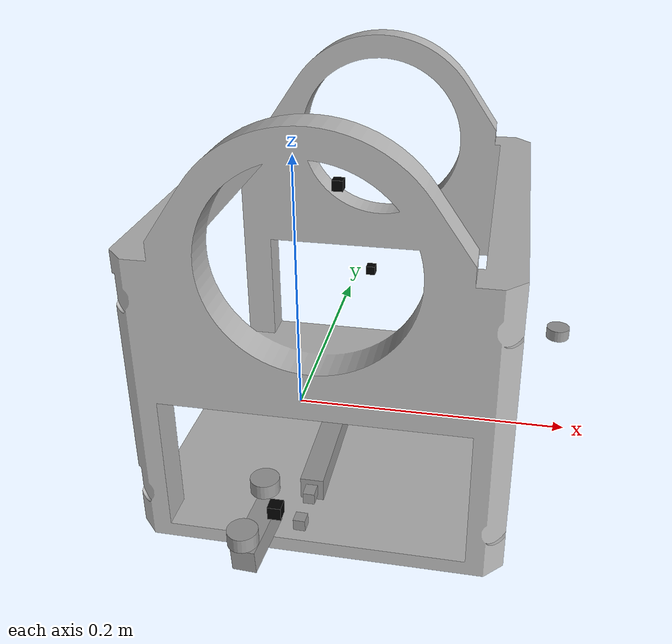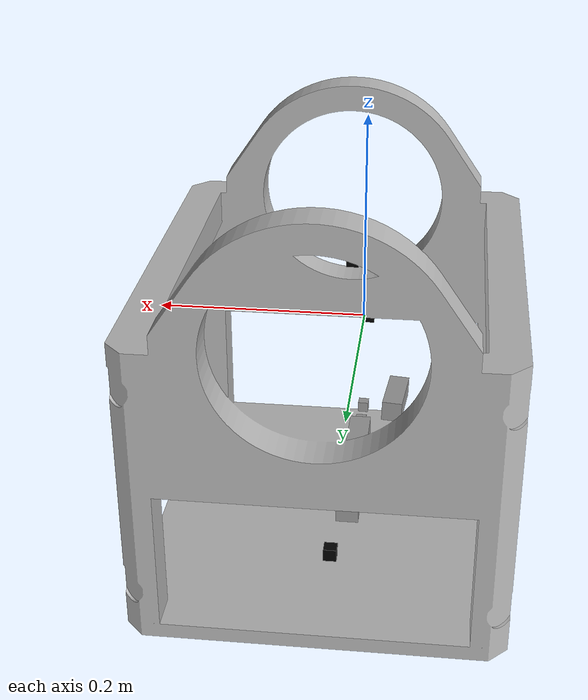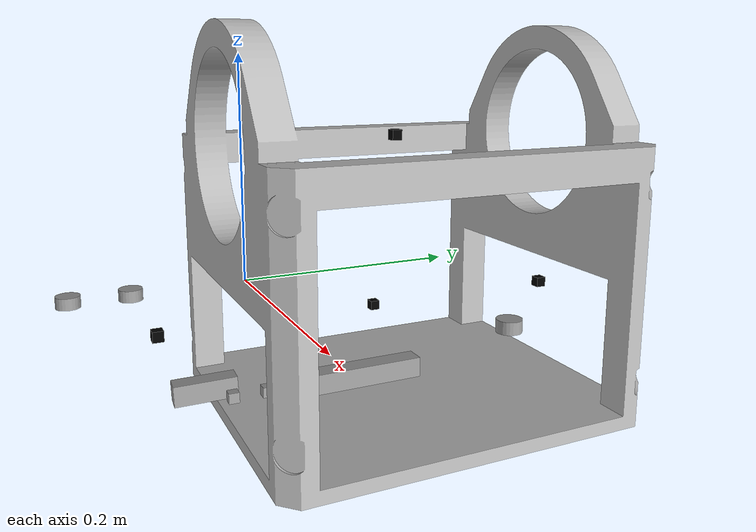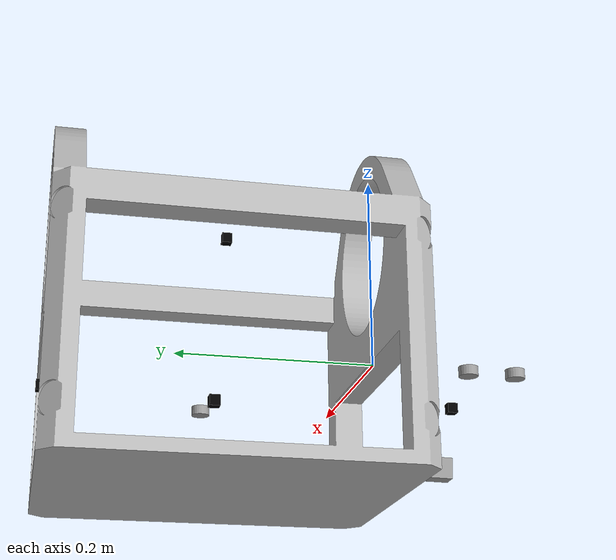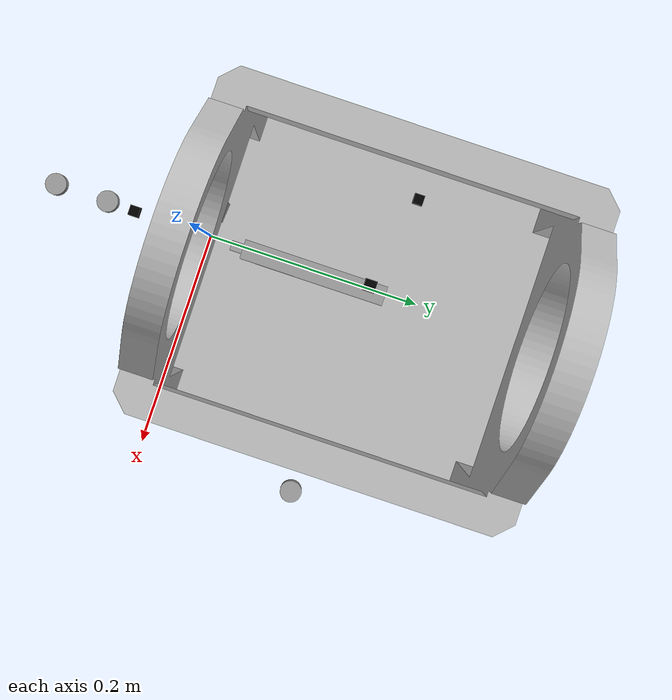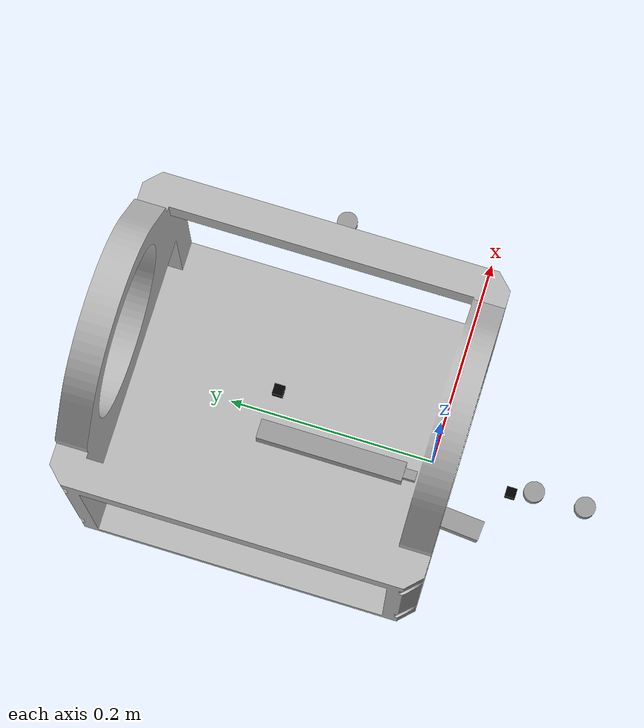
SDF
<?xml version='1.0'?>
<sdf version='1.7'>
  <model name='High_Performance_Beaumont_clawed_bk2'>
    <link name='camera_0_link'>
      <inertial>
        <mass>0.0191625</mass>
        <inertia>
          <ixx>7.98e-06</ixx>
          <ixy>0</ixy>
          <ixz>0</ixz>
          <iyy>7.98e-06</iyy>
          <iyz>0</iyz>
          <izz>7.98e-06</izz>
        </inertia>
        <pose>0 0 0 0 -0 0</pose>
      </inertial>
      <pose>-0 0.325 -0.04 7e-06 -0 -1.5708</pose>
      <gravity>1</gravity>
      <self_collide>0</self_collide>
      <kinematic>0</kinematic>
      <enable_wind>0</enable_wind>
      <sensor name='camera0' type='camera'>
        <update_rate>60</update_rate>
        <visualize>0</visualize>
        <camera name='head'>
          <horizontal_fov>1.39626</horizontal_fov>
          <image>
            <width>640</width>
            <height>480</height>
            <format>R8G8B8</format>
          </image>
          <clip>
            <near>0.02</near>
            <far>300</far>
          </clip>
          <noise>
            <type>gaussian</type>
            <mean>0</mean>
            <stddev>0.007</stddev>
          </noise>
        </camera>
        <plugin name='camera_0_controller' filename='libgazebo_ros_camera.so'>
          <ros>
            <namespace>demo_cam</namespace>
            <remapping>image_raw:=image_demo_0</remapping>
            <remapping>camera_info:=camera_info_demo_0</remapping>
          </ros>
        </plugin>
      </sensor>
      <visual name='visual'>
        <pose>0 0 0 0 -0 0</pose>
        <geometry>
          <box>
            <size>0.01 0.01 0.01</size>
          </box>
        </geometry>
        <material>
          <shader type='pixel'>
            <normal_map>__default__</normal_map>
          </shader>
          <script>
            <name>ModelPreview_4::camera_0_link::visual_MATERIAL_</name>
            <uri>__default__</uri>
          </script>
          <ambient>0 0 0 1</ambient>
          <diffuse>0 0 0 1</diffuse>
          <specular>0 0 0 1</specular>
          <emissive>0 0 0 1</emissive>
        </material>
        <transparency>0</transparency>
        <cast_shadows>1</cast_shadows>
      </visual>
      <collision name='collision_0'>
        <laser_retro>0</laser_retro>
        <max_contacts>10</max_contacts>
        <pose>0 0 0 0 -0 0</pose>
        <geometry>
          <box>
            <size>0.01 0.01 0.01</size>
          </box>
        </geometry>
        <surface>
          <friction>
            <ode>
              <mu>1</mu>
              <mu2>1</mu2>
              <fdir1>0 0 0</fdir1>
              <slip1>0</slip1>
              <slip2>0</slip2>
            </ode>
            <torsional>
              <coefficient>1</coefficient>
              <patch_radius>0</patch_radius>
              <surface_radius>0</surface_radius>
              <use_patch_radius>1</use_patch_radius>
              <ode>
                <slip>0</slip>
              </ode>
            </torsional>
          </friction>
          <bounce>
            <restitution_coefficient>0</restitution_coefficient>
            <threshold>1e+06</threshold>
          </bounce>
          <contact>
            <collide_without_contact>0</collide_without_contact>
            <collide_without_contact_bitmask>1</collide_without_contact_bitmask>
            <collide_bitmask>1</collide_bitmask>
            <ode>
              <soft_cfm>0</soft_cfm>
              <soft_erp>0.2</soft_erp>
              <kp>1e+13</kp>
              <kd>1</kd>
              <max_vel>0.01</max_vel>
              <min_depth>0</min_depth>
            </ode>
            <bullet>
              <split_impulse>1</split_impulse>
              <split_impulse_penetration_threshold>-0.01</split_impulse_penetration_threshold>
              <soft_cfm>0</soft_cfm>
              <soft_erp>0.2</soft_erp>
              <kp>1e+13</kp>
              <kd>1</kd>
            </bullet>
          </contact>
        </surface>
      </collision>
    </link>
    <link name='camera_1_link'>
      <inertial>
        <mass>0.0191625</mass>
        <inertia>
          <ixx>7.98e-06</ixx>
          <ixy>0</ixy>
          <ixz>0</ixz>
          <iyy>7.98e-06</iyy>
          <iyz>0</iyz>
          <izz>7.98e-06</izz>
        </inertia>
        <pose>0 0 0 0 -0 0</pose>
      </inertial>
      <pose>0 -0.08 -0.04 3.07888 1.57079 -1.63351</pose>
      <gravity>1</gravity>
      <self_collide>0</self_collide>
      <kinematic>0</kinematic>
      <enable_wind>0</enable_wind>
      <sensor name='camera1' type='camera'>
        <update_rate>60</update_rate>
        <visualize>0</visualize>
        <camera name='head'>
          <horizontal_fov>1.39626</horizontal_fov>
          <image>
            <width>640</width>
            <height>480</height>
            <format>R8G8B8</format>
          </image>
          <clip>
            <near>0.02</near>
            <far>300</far>
          </clip>
          <noise>
            <type>gaussian</type>
            <mean>0</mean>
            <stddev>0.007</stddev>
          </noise>
        </camera>
        <plugin name='camera_1_controller' filename='libgazebo_ros_camera.so'>
          <ros>
            <namespace>demo_cam</namespace>
            <remapping>image_raw:=image_demo_1</remapping>
            <remapping>camera_info:=camera_info_demo_1</remapping>
          </ros>
        </plugin>
      </sensor>
      <visual name='visual'>
        <pose>0 0 0 0 -0 0</pose>
        <geometry>
          <box>
            <size>0.01 0.01 0.01</size>
          </box>
        </geometry>
        <transparency>0</transparency>
        <cast_shadows>1</cast_shadows>
        <material>
          <shader type='pixel'>
            <normal_map>__default__</normal_map>
          </shader>
          <script>
            <name>ModelPreview_1::camera_1_link::visual_MATERIAL_</name>
            <uri>__default__</uri>
          </script>
          <ambient>0 0 0 1</ambient>
          <diffuse>0 0 0 1</diffuse>
          <specular>0 0 0 1</specular>
          <emissive>0 0 0 1</emissive>
        </material>
      </visual>
      <collision name='collision_0'>
        <laser_retro>0</laser_retro>
        <max_contacts>10</max_contacts>
        <pose>0 0 0.15 0 -0 0</pose>
        <geometry>
          <box>
            <size>0.01 0.01 0.01</size>
          </box>
        </geometry>
        <surface>
          <friction>
            <ode>
              <mu>1</mu>
              <mu2>1</mu2>
              <fdir1>0 0 0</fdir1>
              <slip1>0</slip1>
              <slip2>0</slip2>
            </ode>
            <torsional>
              <coefficient>1</coefficient>
              <patch_radius>0</patch_radius>
              <surface_radius>0</surface_radius>
              <use_patch_radius>1</use_patch_radius>
              <ode>
                <slip>0</slip>
              </ode>
            </torsional>
          </friction>
          <bounce>
            <restitution_coefficient>0</restitution_coefficient>
            <threshold>1e+06</threshold>
          </bounce>
          <contact>
            <collide_without_contact>0</collide_without_contact>
            <collide_without_contact_bitmask>1</collide_without_contact_bitmask>
            <collide_bitmask>1</collide_bitmask>
            <ode>
              <soft_cfm>0</soft_cfm>
              <soft_erp>0.2</soft_erp>
              <kp>1e+13</kp>
              <kd>1</kd>
              <max_vel>0.01</max_vel>
              <min_depth>0</min_depth>
            </ode>
            <bullet>
              <split_impulse>1</split_impulse>
              <split_impulse_penetration_threshold>-0.01</split_impulse_penetration_threshold>
              <soft_cfm>0</soft_cfm>
              <soft_erp>0.2</soft_erp>
              <kp>1e+13</kp>
              <kd>1</kd>
            </bullet>
          </contact>
        </surface>
      </collision>
    </link>
    <link name='camera_2_link'>
      <inertial>
        <mass>0.0191625</mass>
        <inertia>
          <ixx>7.98e-06</ixx>
          <ixy>0</ixy>
          <ixz>0</ixz>
          <iyy>7.98e-06</iyy>
          <iyz>0</iyz>
          <izz>7.98e-06</izz>
        </inertia>
        <pose>0 0 0 0 -0 0</pose>
      </inertial>
      <pose>-0.1 0.175 -0.075 -0 -0 -3.14159</pose>
      <gravity>1</gravity>
      <self_collide>0</self_collide>
      <kinematic>0</kinematic>
      <enable_wind>0</enable_wind>
      <sensor name='camera2' type='camera'>
        <update_rate>60</update_rate>
        <visualize>0</visualize>
        <camera name='head'>
          <horizontal_fov>1.39626</horizontal_fov>
          <image>
            <width>640</width>
            <height>480</height>
            <format>R8G8B8</format>
          </image>
          <clip>
            <near>0.02</near>
            <far>300</far>
          </clip>
          <noise>
            <type>gaussian</type>
            <mean>0</mean>
            <stddev>0.007</stddev>
          </noise>
        </camera>
        <plugin name='camera_2_controller' filename='libgazebo_ros_camera.so'>
          <ros>
            <namespace>demo_cam</namespace>
            <remapping>image_raw:=image_demo_2</remapping>
            <remapping>camera_info:=camera_info_demo_2</remapping>
          </ros>
        </plugin>
      </sensor>
      <visual name='visual'>
        <pose>0 0 0 0 -0 0</pose>
        <geometry>
          <box>
            <size>0.01 0.01 0.01</size>
          </box>
        </geometry>
        <transparency>0</transparency>
        <cast_shadows>1</cast_shadows>
        <material>
          <shader type='pixel'>
            <normal_map>__default__</normal_map>
          </shader>
          <script>
            <name>ModelPreview_1::camera_2_link::visual_MATERIAL_</name>
            <uri>__default__</uri>
          </script>
          <ambient>0 0 0 1</ambient>
          <diffuse>0 0 0 1</diffuse>
          <specular>0 0 0 1</specular>
          <emissive>0 0 0 1</emissive>
        </material>
      </visual>
      <collision name='collision_0'>
        <laser_retro>0</laser_retro>
        <max_contacts>10</max_contacts>
        <pose>0 0 0 0 -0 0</pose>
        <geometry>
          <box>
            <size>0.01 0.01 0.01</size>
          </box>
        </geometry>
        <surface>
          <friction>
            <ode>
              <mu>1</mu>
              <mu2>1</mu2>
              <fdir1>0 0 0</fdir1>
              <slip1>0</slip1>
              <slip2>0</slip2>
            </ode>
            <torsional>
              <coefficient>1</coefficient>
              <patch_radius>0</patch_radius>
              <surface_radius>0</surface_radius>
              <use_patch_radius>1</use_patch_radius>
              <ode>
                <slip>0</slip>
              </ode>
            </torsional>
          </friction>
          <bounce>
            <restitution_coefficient>0</restitution_coefficient>
            <threshold>1e+06</threshold>
          </bounce>
          <contact>
            <collide_without_contact>0</collide_without_contact>
            <collide_without_contact_bitmask>1</collide_without_contact_bitmask>
            <collide_bitmask>1</collide_bitmask>
            <ode>
              <soft_cfm>0</soft_cfm>
              <soft_erp>0.2</soft_erp>
              <kp>1e+13</kp>
              <kd>1</kd>
              <max_vel>0.01</max_vel>
              <min_depth>0</min_depth>
            </ode>
            <bullet>
              <split_impulse>1</split_impulse>
              <split_impulse_penetration_threshold>-0.01</split_impulse_penetration_threshold>
              <soft_cfm>0</soft_cfm>
              <soft_erp>0.2</soft_erp>
              <kp>1e+13</kp>
              <kd>1</kd>
            </bullet>
          </contact>
        </surface>
      </collision>
    </link>
    <link name='camera_3_link'>
      <inertial>
        <mass>0.0191625</mass>
        <inertia>
          <ixx>7.98e-06</ixx>
          <ixy>0</ixy>
          <ixz>0</ixz>
          <iyy>7.98e-06</iyy>
          <iyz>0</iyz>
          <izz>7.98e-06</izz>
        </inertia>
        <pose>0 0 0 0 -0 0</pose>
      </inertial>
      <pose>0 0.15 0.125 3.13868 -1.57079 -3.13869</pose>
      <gravity>1</gravity>
      <self_collide>0</self_collide>
      <kinematic>0</kinematic>
      <enable_wind>0</enable_wind>
      <sensor name='camera3' type='camera'>
        <update_rate>60</update_rate>
        <visualize>0</visualize>
        <camera name='head'>
          <horizontal_fov>1.39626</horizontal_fov>
          <image>
            <width>640</width>
            <height>480</height>
            <format>R8G8B8</format>
          </image>
          <clip>
            <near>0.02</near>
            <far>300</far>
          </clip>
          <noise>
            <type>gaussian</type>
            <mean>0</mean>
            <stddev>0.007</stddev>
          </noise>
        </camera>
        <plugin name='camera_3_controller' filename='libgazebo_ros_camera.so'>
          <ros>
            <namespace>demo_cam</namespace>
            <remapping>image_raw:=image_demo_3</remapping>
            <remapping>camera_info:=camera_info_demo_3</remapping>
          </ros>
        </plugin>
      </sensor>
      <visual name='visual'>
        <pose>0 0 0 0 -0 0</pose>
        <geometry>
          <box>
            <size>0.01 0.01 0.01</size>
          </box>
        </geometry>
        <transparency>0</transparency>
        <cast_shadows>1</cast_shadows>
        <material>
          <shader type='pixel'>
            <normal_map>__default__</normal_map>
          </shader>
          <script>
            <name>ModelPreview_1::camera_3_link::visual_MATERIAL_</name>
            <uri>__default__</uri>
          </script>
          <ambient>0 0 0 1</ambient>
          <diffuse>0 0 0 1</diffuse>
          <specular>0 0 0 1</specular>
          <emissive>0 0 0 1</emissive>
        </material>
      </visual>
      <collision name='collision_0'>
        <laser_retro>0</laser_retro>
        <max_contacts>10</max_contacts>
        <pose>0 0 0 0 -0 0</pose>
        <geometry>
          <box>
            <size>0.01 0.01 0.01</size>
          </box>
        </geometry>
        <surface>
          <friction>
            <ode>
              <mu>1</mu>
              <mu2>1</mu2>
              <fdir1>0 0 0</fdir1>
              <slip1>0</slip1>
              <slip2>0</slip2>
            </ode>
            <torsional>
              <coefficient>1</coefficient>
              <patch_radius>0</patch_radius>
              <surface_radius>0</surface_radius>
              <use_patch_radius>1</use_patch_radius>
              <ode>
                <slip>0</slip>
              </ode>
            </torsional>
          </friction>
          <bounce>
            <restitution_coefficient>0</restitution_coefficient>
            <threshold>1e+06</threshold>
          </bounce>
          <contact>
            <collide_without_contact>0</collide_without_contact>
            <collide_without_contact_bitmask>1</collide_without_contact_bitmask>
            <collide_bitmask>1</collide_bitmask>
            <ode>
              <soft_cfm>0</soft_cfm>
              <soft_erp>0.2</soft_erp>
              <kp>1e+13</kp>
              <kd>1</kd>
              <max_vel>0.01</max_vel>
              <min_depth>0</min_depth>
            </ode>
            <bullet>
              <split_impulse>1</split_impulse>
              <split_impulse_penetration_threshold>-0.01</split_impulse_penetration_threshold>
              <soft_cfm>0</soft_cfm>
              <soft_erp>0.2</soft_erp>
              <kp>1e+13</kp>
              <kd>1</kd>
            </bullet>
          </contact>
        </surface>
      </collision>
    </link>
    <link name='chassis'>
      <inertial>
        <mass>23</mass>
        <inertia>
          <ixx>0</ixx>
          <ixy>0</ixy>
          <ixz>0</ixz>
          <iyy>0</iyy>
          <iyz>0</iyz>
          <izz>0</izz>
        </inertia>
        <pose>0 0 0 0 -0 0</pose>
        <frame name='chassis_frame'>
          <pose>0.00021834938853005234831 0.0026258751704539458338 -0.047190191410688107909 0 0 0</pose>
        </frame>
      </inertial>
      <self_collide>0</self_collide>
      <enable_wind>0</enable_wind>
      <kinematic>0</kinematic>
      <pose>0.012991 0.00535 0 0 -0 0</pose>
      <gravity>1</gravity>
      <frame name='chassis_frame'>
        <pose>0 0 0 0 -0 0</pose>
      </frame>
      <visual name='assembly_visual'>
        <pose>0 0 0 0 -0 0</pose>
        <geometry>
          <mesh>
            <uri>/home/eer/Documents/Software_2024/ROS2/models/High_Performance_Beaumont_clawed/assembly_visual.stl</uri>
            <scale>1 1 1</scale>
          </mesh>
        </geometry>
        <material>
          <shader type='pixel'/>
          <emissive>0 0 0 1</emissive>
        </material>
        <transparency>0</transparency>
        <cast_shadows>1</cast_shadows>
      </visual>
      <collision name='assembly_collision'>
        <laser_retro>0</laser_retro>
        <max_contacts>10</max_contacts>
        <pose>0 0 0 0 -0 0</pose>
        <geometry>
          <mesh>
            <uri>/home/eer/Documents/Software_2024/ROS2/models/High_Performance_Beaumont_clawed/assembly_collision.stl</uri>
            <scale>1 1 1</scale>
          </mesh>
        </geometry>
        <surface>
          <friction>
            <ode>
              <mu>1</mu>
              <mu2>1</mu2>
              <fdir1>0 0 0</fdir1>
              <slip1>0</slip1>
              <slip2>0</slip2>
            </ode>
            <torsional>
              <coefficient>1</coefficient>
              <patch_radius>0</patch_radius>
              <surface_radius>0</surface_radius>
              <use_patch_radius>1</use_patch_radius>
              <ode>
                <slip>0</slip>
              </ode>
            </torsional>
          </friction>
          <bounce>
            <restitution_coefficient>0</restitution_coefficient>
            <threshold>1e+06</threshold>
          </bounce>
          <contact>
            <collide_without_contact>0</collide_without_contact>
            <collide_without_contact_bitmask>1</collide_without_contact_bitmask>
            <collide_bitmask>1</collide_bitmask>
            <ode>
              <soft_cfm>0</soft_cfm>
              <soft_erp>0.2</soft_erp>
              <kp>1e+13</kp>
              <kd>1</kd>
              <max_vel>0.01</max_vel>
              <min_depth>0</min_depth>
            </ode>
            <bullet>
              <split_impulse>1</split_impulse>
              <split_impulse_penetration_threshold>-0.01</split_impulse_penetration_threshold>
              <soft_cfm>0</soft_cfm>
              <soft_erp>0.2</soft_erp>
              <kp>1e+13</kp>
              <kd>1</kd>
            </bullet>
          </contact>
        </surface>
      </collision>
    </link>
    <link name='link_2'>
      <inertial>
        <mass>1</mass>
        <inertia>
          <ixx>0.166667</ixx>
          <ixy>0</ixy>
          <ixz>0</ixz>
          <iyy>0.166667</iyy>
          <iyz>0</iyz>
          <izz>0.166667</izz>
        </inertia>
        <pose>0 0 0 0 -0 0</pose>
      </inertial>
      <pose>-0 -0.015 -0.109 0.017824 -0.014651 -0.038877</pose>
      <gravity>1</gravity>
      <self_collide>0</self_collide>
      <kinematic>0</kinematic>
      <enable_wind>0</enable_wind>
      <visual name='visual'>
        <pose>0 0 0 0 -0 0</pose>
        <geometry>
          <box>
            <size>0.01 0.01 0.01</size>
          </box>
        </geometry>
        <material>
          <lighting>1</lighting>
          <script>
            <uri>file://media/materials/scripts/gazebo.material</uri>
            <name>Gazebo/Grey</name>
          </script>
          <shader type='pixel'>
            <normal_map>__default__</normal_map>
          </shader>
          <ambient>0.3 0.3 0.3 1</ambient>
          <diffuse>0.7 0.7 0.7 1</diffuse>
          <specular>0.01 0.01 0.01 1</specular>
          <emissive>0 0 0 1</emissive>
        </material>
        <transparency>0</transparency>
        <cast_shadows>1</cast_shadows>
      </visual>
      <collision name='collision'>
        <laser_retro>0</laser_retro>
        <max_contacts>10</max_contacts>
        <pose>0 0 0 0 -0 0</pose>
        <geometry>
          <box>
            <size>0.01 0.01 0.01</size>
          </box>
        </geometry>
        <surface>
          <friction>
            <ode>
              <mu>1</mu>
              <mu2>1</mu2>
              <fdir1>0 0 0</fdir1>
              <slip1>0</slip1>
              <slip2>0</slip2>
            </ode>
            <torsional>
              <coefficient>1</coefficient>
              <patch_radius>0</patch_radius>
              <surface_radius>0</surface_radius>
              <use_patch_radius>1</use_patch_radius>
              <ode>
                <slip>0</slip>
              </ode>
            </torsional>
          </friction>
          <bounce>
            <restitution_coefficient>0</restitution_coefficient>
            <threshold>1e+06</threshold>
          </bounce>
          <contact>
            <collide_without_contact>0</collide_without_contact>
            <collide_without_contact_bitmask>1</collide_without_contact_bitmask>
            <collide_bitmask>1</collide_bitmask>
            <ode>
              <soft_cfm>0</soft_cfm>
              <soft_erp>0.2</soft_erp>
              <kp>1e+13</kp>
              <kd>1</kd>
              <max_vel>0.01</max_vel>
              <min_depth>0</min_depth>
            </ode>
            <bullet>
              <split_impulse>1</split_impulse>
              <split_impulse_penetration_threshold>-0.01</split_impulse_penetration_threshold>
              <soft_cfm>0</soft_cfm>
              <soft_erp>0.2</soft_erp>
              <kp>1e+13</kp>
              <kd>1</kd>
            </bullet>
          </contact>
        </surface>
      </collision>
    </link>
    <link name='link_2_clone'>
      <inertial>
        <mass>1</mass>
        <inertia>
          <ixx>0.166667</ixx>
          <ixy>0</ixy>
          <ixz>0</ixz>
          <iyy>0.166667</iyy>
          <iyz>0</iyz>
          <izz>0.166667</izz>
        </inertia>
        <pose>0 0 0 0 -0 0</pose>
      </inertial>
      <pose>-0.031518 -0.033798 -0.110152 0.03621 -0.028595 -0.078022</pose>
      <gravity>1</gravity>
      <self_collide>0</self_collide>
      <kinematic>0</kinematic>
      <enable_wind>0</enable_wind>
      <visual name='visual'>
        <pose>0 0 0 0 -0 0</pose>
        <geometry>
          <box>
            <size>0.02 0.06 0.02</size>
          </box>
        </geometry>
        <material>
          <lighting>1</lighting>
          <script>
            <uri>file://media/materials/scripts/gazebo.material</uri>
            <name>Gazebo/Grey</name>
          </script>
          <shader type='pixel'>
            <normal_map>__default__</normal_map>
          </shader>
          <ambient>0.3 0.3 0.3 1</ambient>
          <diffuse>0.7 0.7 0.7 1</diffuse>
          <specular>0.01 0.01 0.01 1</specular>
          <emissive>0 0 0 1</emissive>
        </material>
        <transparency>0</transparency>
        <cast_shadows>1</cast_shadows>
      </visual>
      <collision name='collision'>
        <laser_retro>0</laser_retro>
        <max_contacts>10</max_contacts>
        <pose>0 0 0 0 -0 0</pose>
        <geometry>
          <box>
            <size>0.02 0.06 0.02</size>
          </box>
        </geometry>
        <surface>
          <friction>
            <ode>
              <mu>1</mu>
              <mu2>1</mu2>
              <fdir1>0 0 0</fdir1>
              <slip1>0</slip1>
              <slip2>0</slip2>
            </ode>
            <torsional>
              <coefficient>1</coefficient>
              <patch_radius>0</patch_radius>
              <surface_radius>0</surface_radius>
              <use_patch_radius>1</use_patch_radius>
              <ode>
                <slip>0</slip>
              </ode>
            </torsional>
          </friction>
          <bounce>
            <restitution_coefficient>0</restitution_coefficient>
            <threshold>1e+06</threshold>
          </bounce>
          <contact>
            <collide_without_contact>0</collide_without_contact>
            <collide_without_contact_bitmask>1</collide_without_contact_bitmask>
            <collide_bitmask>1</collide_bitmask>
            <ode>
              <soft_cfm>0</soft_cfm>
              <soft_erp>0.2</soft_erp>
              <kp>1e+13</kp>
              <kd>1</kd>
              <max_vel>0.01</max_vel>
              <min_depth>0</min_depth>
            </ode>
            <bullet>
              <split_impulse>1</split_impulse>
              <split_impulse_penetration_threshold>-0.01</split_impulse_penetration_threshold>
              <soft_cfm>0</soft_cfm>
              <soft_erp>0.2</soft_erp>
              <kp>1e+13</kp>
              <kd>1</kd>
            </bullet>
          </contact>
        </surface>
      </collision>
    </link>
    <link name='pitch_link'>
      <inertial>
        <mass>0.00048161</mass>
        <inertia>
          <ixx>0.145833</ixx>
          <ixy>0</ixy>
          <ixz>0</ixz>
          <iyy>0.145833</iyy>
          <iyz>0</iyz>
          <izz>0.125</izz>
        </inertia>
        <pose>0 0 0 0 -0 0</pose>
      </inertial>
      <pose>0 -0.1 0 0 -0 0.000274</pose>
      <gravity>1</gravity>
      <self_collide>0</self_collide>
      <kinematic>0</kinematic>
      <enable_wind>0</enable_wind>
      <visual name='visual'>
        <pose>0 0 0 0 -0 0</pose>
        <geometry>
          <cylinder>
            <radius>0.01</radius>
            <length>0.01</length>
          </cylinder>
        </geometry>
        <material>
          <lighting>1</lighting>
          <script>
            <uri>file://media/materials/scripts/gazebo.material</uri>
            <name>Gazebo/Grey</name>
          </script>
          <shader type='pixel'>
            <normal_map>__default__</normal_map>
          </shader>
          <ambient>0.3 0.3 0.3 1</ambient>
          <diffuse>0.7 0.7 0.7 1</diffuse>
          <specular>0.01 0.01 0.01 1</specular>
          <emissive>0 0 0 1</emissive>
        </material>
        <transparency>0</transparency>
        <cast_shadows>1</cast_shadows>
      </visual>
      <collision name='collision'>
        <laser_retro>0</laser_retro>
        <max_contacts>10</max_contacts>
        <pose>0 0.15 0 0 -0 0</pose>
        <geometry>
          <cylinder>
            <radius>0.01</radius>
            <length>0.01</length>
          </cylinder>
        </geometry>
        <surface>
          <friction>
            <ode>
              <mu>1</mu>
              <mu2>1</mu2>
              <fdir1>0 0 0</fdir1>
              <slip1>0</slip1>
              <slip2>0</slip2>
            </ode>
            <torsional>
              <coefficient>1</coefficient>
              <patch_radius>0</patch_radius>
              <surface_radius>0</surface_radius>
              <use_patch_radius>1</use_patch_radius>
              <ode>
                <slip>0</slip>
              </ode>
            </torsional>
          </friction>
          <bounce>
            <restitution_coefficient>0</restitution_coefficient>
            <threshold>1e+06</threshold>
          </bounce>
          <contact>
            <collide_without_contact>0</collide_without_contact>
            <collide_without_contact_bitmask>1</collide_without_contact_bitmask>
            <collide_bitmask>1</collide_bitmask>
            <ode>
              <soft_cfm>0</soft_cfm>
              <soft_erp>0.2</soft_erp>
              <kp>1e+13</kp>
              <kd>1</kd>
              <max_vel>0.01</max_vel>
              <min_depth>0</min_depth>
            </ode>
            <bullet>
              <split_impulse>1</split_impulse>
              <split_impulse_penetration_threshold>-0.01</split_impulse_penetration_threshold>
              <soft_cfm>0</soft_cfm>
              <soft_erp>0.2</soft_erp>
              <kp>1e+13</kp>
              <kd>1</kd>
            </bullet>
          </contact>
        </surface>
      </collision>
    </link>
    <link name='roll_link'>
      <inertial>
        <mass>0.00048161</mass>
        <inertia>
          <ixx>0.145833</ixx>
          <ixy>0</ixy>
          <ixz>0</ixz>
          <iyy>0.145833</iyy>
          <iyz>0</iyz>
          <izz>0.125</izz>
        </inertia>
        <pose>0 0 0 0 -0 0</pose>
      </inertial>
      <pose>0.2 0.145 0 0 -0 0</pose>
      <gravity>1</gravity>
      <self_collide>0</self_collide>
      <kinematic>0</kinematic>
      <enable_wind>0</enable_wind>
      <visual name='visual'>
        <pose>0 0 0 0 -0 0</pose>
        <geometry>
          <cylinder>
            <radius>0.01</radius>
            <length>0.01</length>
          </cylinder>
        </geometry>
        <material>
          <lighting>1</lighting>
          <script>
            <uri>file://media/materials/scripts/gazebo.material</uri>
            <name>Gazebo/Grey</name>
          </script>
          <shader type='pixel'>
            <normal_map>__default__</normal_map>
          </shader>
          <ambient>0.3 0.3 0.3 1</ambient>
          <diffuse>0.7 0.7 0.7 1</diffuse>
          <specular>0.01 0.01 0.01 1</specular>
          <emissive>0 0 0 1</emissive>
        </material>
        <transparency>0</transparency>
        <cast_shadows>1</cast_shadows>
      </visual>
      <collision name='collision'>
        <laser_retro>0</laser_retro>
        <max_contacts>10</max_contacts>
        <pose>0 0 0 0 -0 0</pose>
        <geometry>
          <cylinder>
            <radius>0.01</radius>
            <length>0.01</length>
          </cylinder>
        </geometry>
        <surface>
          <friction>
            <ode>
              <mu>1</mu>
              <mu2>1</mu2>
              <fdir1>0 0 0</fdir1>
              <slip1>0</slip1>
              <slip2>0</slip2>
            </ode>
            <torsional>
              <coefficient>1</coefficient>
              <patch_radius>0</patch_radius>
              <surface_radius>0</surface_radius>
              <use_patch_radius>1</use_patch_radius>
              <ode>
                <slip>0</slip>
              </ode>
            </torsional>
          </friction>
          <bounce>
            <restitution_coefficient>0</restitution_coefficient>
            <threshold>1e+06</threshold>
          </bounce>
          <contact>
            <collide_without_contact>0</collide_without_contact>
            <collide_without_contact_bitmask>1</collide_without_contact_bitmask>
            <collide_bitmask>1</collide_bitmask>
            <ode>
              <soft_cfm>0</soft_cfm>
              <soft_erp>0.2</soft_erp>
              <kp>1e+13</kp>
              <kd>1</kd>
              <max_vel>0.01</max_vel>
              <min_depth>0</min_depth>
            </ode>
            <bullet>
              <split_impulse>1</split_impulse>
              <split_impulse_penetration_threshold>-0.01</split_impulse_penetration_threshold>
              <soft_cfm>0</soft_cfm>
              <soft_erp>0.2</soft_erp>
              <kp>1e+13</kp>
              <kd>1</kd>
            </bullet>
          </contact>
        </surface>
      </collision>
    </link>
    <link name='yaw_link'>
      <inertial>
        <mass>0.00048161</mass>
        <inertia>
          <ixx>0.145833</ixx>
          <ixy>0</ixy>
          <ixz>0</ixz>
          <iyy>0.145833</iyy>
          <iyz>0</iyz>
          <izz>0.125</izz>
        </inertia>
        <pose>0 0 0 0 -0 0</pose>
      </inertial>
      <pose>0 -0.15 -0 0 -0 0</pose>
      <gravity>1</gravity>
      <self_collide>0</self_collide>
      <kinematic>0</kinematic>
      <enable_wind>0</enable_wind>
      <visual name='visual'>
        <pose>0 0 0 0 -0 0</pose>
        <geometry>
          <cylinder>
            <radius>0.01</radius>
            <length>0.01</length>
          </cylinder>
        </geometry>
        <material>
          <lighting>1</lighting>
          <script>
            <uri>file://media/materials/scripts/gazebo.material</uri>
            <name>Gazebo/Grey</name>
          </script>
          <shader type='pixel'>
            <normal_map>__default__</normal_map>
          </shader>
          <ambient>0.3 0.3 0.3 1</ambient>
          <diffuse>0.7 0.7 0.7 1</diffuse>
          <specular>0.01 0.01 0.01 1</specular>
          <emissive>0 0 0 1</emissive>
        </material>
        <transparency>0</transparency>
        <cast_shadows>1</cast_shadows>
      </visual>
      <collision name='collision'>
        <laser_retro>0</laser_retro>
        <max_contacts>10</max_contacts>
        <pose>0 0.15 0 0 -0 0</pose>
        <geometry>
          <cylinder>
            <radius>0.01</radius>
            <length>0.01</length>
          </cylinder>
        </geometry>
        <surface>
          <friction>
            <ode>
              <mu>1</mu>
              <mu2>1</mu2>
              <fdir1>0 0 0</fdir1>
              <slip1>0</slip1>
              <slip2>0</slip2>
            </ode>
            <torsional>
              <coefficient>1</coefficient>
              <patch_radius>0</patch_radius>
              <surface_radius>0</surface_radius>
              <use_patch_radius>1</use_patch_radius>
              <ode>
                <slip>0</slip>
              </ode>
            </torsional>
          </friction>
          <bounce>
            <restitution_coefficient>0</restitution_coefficient>
            <threshold>1e+06</threshold>
          </bounce>
          <contact>
            <collide_without_contact>0</collide_without_contact>
            <collide_without_contact_bitmask>1</collide_without_contact_bitmask>
            <collide_bitmask>1</collide_bitmask>
            <ode>
              <soft_cfm>0</soft_cfm>
              <soft_erp>0.2</soft_erp>
              <kp>1e+13</kp>
              <kd>1</kd>
              <max_vel>0.01</max_vel>
              <min_depth>0</min_depth>
            </ode>
            <bullet>
              <split_impulse>1</split_impulse>
              <split_impulse_penetration_threshold>-0.01</split_impulse_penetration_threshold>
              <soft_cfm>0</soft_cfm>
              <soft_erp>0.2</soft_erp>
              <kp>1e+13</kp>
              <kd>1</kd>
            </bullet>
          </contact>
        </surface>
      </collision>
    </link>
    <model name='linear_actuator'>
      <pose>0 0.1 -0.109 0 0 -1.5708</pose>
      <link name='main_body'>
        <inertial>
          <mass>0.01</mass>
          <inertia>
            <ixx>0.145833</ixx>
            <ixy>0</ixy>
            <ixz>0</ixz>
            <iyy>0.145833</iyy>
            <iyz>0</iyz>
            <izz>0.125</izz>
          </inertia>
          <pose>0 0 0 0 -0 0</pose>
        </inertial>
        <self_collide>0</self_collide>
        <enable_wind>0</enable_wind>
        <kinematic>0</kinematic>
        <pose>0 0 0 0 -0 0</pose>
        <gravity>1</gravity>
        <visual name='visual'>
          <geometry>
            <box>
              <size>0.15 0.02 0.02</size>
            </box>
          </geometry>
          <material>
            <script>
              <name>Gazebo/Grey</name>
              <uri>file://media/materials/scripts/gazebo.material</uri>
            </script>
            <shader type='pixel'>
              <normal_map>__default__</normal_map>
            </shader>
            <ambient>0.3 0.3 0.3 1</ambient>
            <diffuse>0.7 0.7 0.7 1</diffuse>
            <specular>0.01 0.01 0.01 1</specular>
            <emissive>0 0 0 1</emissive>
          </material>
          <pose>0 0 0 0 -0 0</pose>
          <transparency>0</transparency>
          <cast_shadows>1</cast_shadows>
        </visual>
        <collision name='collision'>
          <laser_retro>0</laser_retro>
          <max_contacts>10</max_contacts>
          <pose>0 0 0 0 -0 0</pose>
          <geometry>
            <box>
              <size>0.15 0.02 0.02</size>
            </box>
          </geometry>
          <surface>
            <friction>
              <ode>
                <mu>1</mu>
                <mu2>1</mu2>
                <fdir1>0 0 0</fdir1>
                <slip1>0</slip1>
                <slip2>0</slip2>
              </ode>
              <torsional>
                <coefficient>1</coefficient>
                <patch_radius>0</patch_radius>
                <surface_radius>0</surface_radius>
                <use_patch_radius>1</use_patch_radius>
                <ode>
                  <slip>0</slip>
                </ode>
              </torsional>
            </friction>
            <bounce>
              <restitution_coefficient>0</restitution_coefficient>
              <threshold>1e+06</threshold>
            </bounce>
            <contact>
              <collide_without_contact>0</collide_without_contact>
              <collide_without_contact_bitmask>1</collide_without_contact_bitmask>
              <collide_bitmask>1</collide_bitmask>
              <ode>
                <soft_cfm>0</soft_cfm>
                <soft_erp>0.2</soft_erp>
                <kp>1e+13</kp>
                <kd>1</kd>
                <max_vel>0.01</max_vel>
                <min_depth>0</min_depth>
              </ode>
              <bullet>
                <split_impulse>1</split_impulse>
                <split_impulse_penetration_threshold>-0.01</split_impulse_penetration_threshold>
                <soft_cfm>0</soft_cfm>
                <soft_erp>0.2</soft_erp>
                <kp>1e+13</kp>
                <kd>1</kd>
              </bullet>
            </contact>
          </surface>
        </collision>
      </link>
      <link name='tip'>
        <inertial>
          <mass>1</mass>
          <inertia>
            <ixx>0.166667</ixx>
            <ixy>0</ixy>
            <ixz>0</ixz>
            <iyy>0.166667</iyy>
            <iyz>0</iyz>
            <izz>0.166667</izz>
          </inertia>
          <pose>0 0 0 0 -0 0</pose>
        </inertial>
        <pose>0.075 0 0 0 2.8e-05 0</pose>
        <gravity>1</gravity>
        <self_collide>0</self_collide>
        <kinematic>0</kinematic>
        <enable_wind>0</enable_wind>
        <visual name='visual'>
          <pose>0 0 0 0 -0 0</pose>
          <geometry>
            <box>
              <size>0.025 0.01 0.01</size>
            </box>
          </geometry>
          <material>
            <lighting>1</lighting>
            <script>
              <uri>file://media/materials/scripts/gazebo.material</uri>
              <name>Gazebo/Grey</name>
            </script>
            <shader type='pixel'>
              <normal_map>__default__</normal_map>
            </shader>
            <ambient>0.3 0.3 0.3 1</ambient>
            <diffuse>0.7 0.7 0.7 1</diffuse>
            <specular>0.01 0.01 0.01 1</specular>
            <emissive>0 0 0 1</emissive>
          </material>
          <transparency>0</transparency>
          <cast_shadows>1</cast_shadows>
        </visual>
        <collision name='collision'>
          <laser_retro>0</laser_retro>
          <max_contacts>10</max_contacts>
          <pose>0 0 0 0 -0 0</pose>
          <geometry>
            <box>
              <size>0.025 0.01 0.01</size>
            </box>
          </geometry>
          <surface>
            <friction>
              <ode>
                <mu>1</mu>
                <mu2>1</mu2>
                <fdir1>0 0 0</fdir1>
                <slip1>0</slip1>
                <slip2>0</slip2>
              </ode>
              <torsional>
                <coefficient>1</coefficient>
                <patch_radius>0</patch_radius>
                <surface_radius>0</surface_radius>
                <use_patch_radius>1</use_patch_radius>
                <ode>
                  <slip>0</slip>
                </ode>
              </torsional>
            </friction>
            <bounce>
              <restitution_coefficient>0</restitution_coefficient>
              <threshold>1e+06</threshold>
            </bounce>
            <contact>
              <collide_without_contact>0</collide_without_contact>
              <collide_without_contact_bitmask>1</collide_without_contact_bitmask>
              <collide_bitmask>1</collide_bitmask>
              <ode>
                <soft_cfm>0</soft_cfm>
                <soft_erp>0.2</soft_erp>
                <kp>1e+13</kp>
                <kd>1</kd>
                <max_vel>0.01</max_vel>
                <min_depth>0</min_depth>
              </ode>
              <bullet>
                <split_impulse>1</split_impulse>
                <split_impulse_penetration_threshold>-0.01</split_impulse_penetration_threshold>
                <soft_cfm>0</soft_cfm>
                <soft_erp>0.2</soft_erp>
                <kp>1e+13</kp>
                <kd>1</kd>
              </bullet>
            </contact>
          </surface>
        </collision>
      </link>
      <joint name='main_body_to_tip' type='fixed'>
        <parent>main_body</parent>
        <child>tip</child>
        <pose>0 0 0 0 -0 0</pose>
        <physics>
          <ode>
            <limit>
              <cfm>0</cfm>
              <erp>0.2</erp>
            </limit>
            <suspension>
              <cfm>0</cfm>
              <erp>0.2</erp>
            </suspension>
          </ode>
        </physics>
      </joint>
      <static>0</static>
      <allow_auto_disable>1</allow_auto_disable>
      <pose>0 0 0 0 -0 0</pose>
      <plugin name='planar_move_linear_actuator' filename='libgazebo_ros_planar_move.so'>
        <ros>
          <namespace>/demo</namespace>
          <remapping>cmd_vel:=linear_actuator</remapping>
          <remapping>odom:=odom_demo</remapping>
        </ros>
        <update_rate>100</update_rate>
        <publish_rate>10</publish_rate>
        <publish_odom>1</publish_odom>
        <publish_odom_tf>1</publish_odom_tf>
        <odometry_frame>odom_demo</odometry_frame>
        <robot_base_frame>main_body</robot_base_frame>
        <covariance_x>0.0001</covariance_x>
        <covariance_y>0.0001</covariance_y>
        <covariance_yaw>0.01</covariance_yaw>
      </plugin>
    </model>
    <joint name='chassis_JOINT_0_0' type='fixed'>
      <parent>chassis</parent>
      <child>roll_link</child>
      <pose>0 0 0 0 -0 0</pose>
      <physics>
        <ode>
          <limit>
            <cfm>0</cfm>
            <erp>0.2</erp>
          </limit>
          <suspension>
            <cfm>0</cfm>
            <erp>0.2</erp>
          </suspension>
        </ode>
      </physics>
    </joint>
    <joint name='chassis_JOINT_0_1' type='revolute'>
      <parent>chassis</parent>
      <child>yaw_link</child>
      <pose>0 0 0 0 -0 0</pose>
      <axis>
        <xyz>1 0 0</xyz>
        <limit>
          <lower>-1.79769e+308</lower>
          <upper>1.79769e+308</upper>
          <effort>-1</effort>
          <velocity>-1</velocity>
        </limit>
        <dynamics>
          <spring_reference>0</spring_reference>
          <spring_stiffness>0</spring_stiffness>
          <damping>0</damping>
          <friction>0</friction>
        </dynamics>
      </axis>
      <physics>
        <ode>
          <limit>
            <cfm>0</cfm>
            <erp>0.2</erp>
          </limit>
          <suspension>
            <cfm>0</cfm>
            <erp>0.2</erp>
          </suspension>
        </ode>
      </physics>
    </joint>
    <joint name='chassis_JOINT_0_2' type='fixed'>
      <parent>chassis</parent>
      <child>camera_0_link</child>
      <pose>0 0 0 0 -0 0</pose>
      <physics>
        <ode>
          <limit>
            <cfm>0</cfm>
            <erp>0.2</erp>
          </limit>
          <suspension>
            <cfm>0</cfm>
            <erp>0.2</erp>
          </suspension>
        </ode>
      </physics>
    </joint>
    <joint name='chassis_JOINT_0_3' type='fixed'>
      <parent>chassis</parent>
      <child>camera_2_link</child>
      <pose>0 0 0 0 -0 0</pose>
      <physics>
        <ode>
          <limit>
            <cfm>0</cfm>
            <erp>0.2</erp>
          </limit>
          <suspension>
            <cfm>0</cfm>
            <erp>0.2</erp>
          </suspension>
        </ode>
      </physics>
    </joint>
    <joint name='chassis_JOINT_0' type='fixed'>
      <parent>chassis</parent>
      <child>pitch_link</child>
      <pose>0 0 0 0 -0 0</pose>
      <physics>
        <ode>
          <limit>
            <cfm>0</cfm>
            <erp>0.2</erp>
          </limit>
          <suspension>
            <cfm>0</cfm>
            <erp>0.2</erp>
          </suspension>
        </ode>
      </physics>
    </joint>
    <joint name='chassis_JOINT_15' type='revolute'>
      <parent>chassis</parent>
      <child>link_2_clone</child>
      <pose>0.026 0.02148 0 0 -0 0</pose>
      <axis>
        <xyz>0 0 1</xyz>
        <limit>
          <lower>-1.79769e+308</lower>
          <upper>1.79769e+308</upper>
          <effort>-1</effort>
          <velocity>-1</velocity>
        </limit>
        <dynamics>
          <spring_reference>0</spring_reference>
          <spring_stiffness>0</spring_stiffness>
          <damping>0</damping>
          <friction>0</friction>
        </dynamics>
      </axis>
      <physics>
        <ode>
          <limit>
            <cfm>0</cfm>
            <erp>0.2</erp>
          </limit>
          <suspension>
            <cfm>0</cfm>
            <erp>0.2</erp>
          </suspension>
        </ode>
      </physics>
    </joint>
    <joint name='chassis_JOINT_1_0' type='fixed'>
      <parent>chassis</parent>
      <child>camera_3_link</child>
      <pose>0 0 0 0 -0 0</pose>
      <physics>
        <ode>
          <limit>
            <cfm>0</cfm>
            <erp>0.2</erp>
          </limit>
          <suspension>
            <cfm>0</cfm>
            <erp>0.2</erp>
          </suspension>
        </ode>
      </physics>
    </joint>
    <joint name='chassis_JOINT_1' type='fixed'>
      <parent>chassis</parent>
      <child>camera_1_link</child>
      <pose>0 0 0 0 -0 0</pose>
      <physics>
        <ode>
          <limit>
            <cfm>0</cfm>
            <erp>0.2</erp>
          </limit>
          <suspension>
            <cfm>0</cfm>
            <erp>0.2</erp>
          </suspension>
        </ode>
      </physics>
    </joint>
    <joint name='chassis_JOINT_4' type='prismatic'>
      <parent>chassis</parent>
      <child>linear_actuator::main_body</child>
      <pose>0 0 0 0 -0 0</pose>
      <axis>
        <xyz expressed_in='__model__'>0 1 0</xyz>
        <limit>
          <lower>-0.025</lower>
          <upper>0.025</upper>
          <effort>-1</effort>
          <velocity>-1</velocity>
        </limit>
        <dynamics>
          <spring_reference>0</spring_reference>
          <spring_stiffness>0</spring_stiffness>
          <damping>0</damping>
          <friction>0</friction>
        </dynamics>
      </axis>
      <physics>
        <ode>
          <limit>
            <cfm>0</cfm>
            <erp>0.2</erp>
          </limit>
          <suspension>
            <cfm>0</cfm>
            <erp>0.2</erp>
          </suspension>
        </ode>
      </physics>
    </joint>
    <joint name='chassis_JOINT_5' type='fixed'>
      <parent>chassis</parent>
      <child>link_2</child>
      <pose>0 0 0 0 -0 0</pose>
      <physics>
        <ode>
          <limit>
            <cfm>0</cfm>
            <erp>0.2</erp>
          </limit>
          <suspension>
            <cfm>0</cfm>
            <erp>0.2</erp>
          </suspension>
        </ode>
      </physics>
    </joint>
    <joint name='tip_JOINT_16' type='ball'>
      <parent>linear_actuator::tip</parent>
      <child>link_2_clone</child>
      <pose>0 0 0 0 -0 0</pose>
      <physics>
        <ode>
          <limit>
            <cfm>0</cfm>
            <erp>0.2</erp>
          </limit>
          <suspension>
            <cfm>0</cfm>
            <erp>0.2</erp>
          </suspension>
        </ode>
      </physics>
    </joint>
    <static>0</static>
    <allow_auto_disable>1</allow_auto_disable>
    <plugin name='buoyancy' filename='libBuoyancyPlugin.so'>
      <fluid_density>145</fluid_density>
    </plugin>
    <plugin name='gazebo_ros_force_linear' filename='libgazebo_ros_force.so'>
      <ros>
        <namespace>/demo/link</namespace>
        <remapping>gazebo_ros_force:=simulation_model_linear_velocity_z</remapping>
      </ros>
      <link_name>chassis</link_name>
      <force_frame>world</force_frame>
    </plugin>
    <plugin name='gazebo_ros_force_pitch' filename='libgazebo_ros_force.so'>
      <ros>
        <namespace>/demo/link</namespace>
        <remapping>gazebo_ros_force:=force_demo_pitch</remapping>
      </ros>
      <link_name>pitch_link</link_name>
      <force_frame>world</force_frame>
    </plugin>
    <plugin name='gazebo_ros_force_roll' filename='libgazebo_ros_force.so'>
      <ros>
        <namespace>/demo/link</namespace>
        <remapping>gazebo_ros_force:=force_demo_roll</remapping>
      </ros>
      <link_name>roll_link</link_name>
      <force_frame>world</force_frame>
    </plugin>
    <plugin name='gazebo_ros_force_yaw' filename='libgazebo_ros_force.so'>
      <ros>
        <namespace>/demo/link</namespace>
        <remapping>gazebo_ros_force:=force_demo_yaw</remapping>
      </ros>
      <link_name>yaw_link</link_name>
      <force_frame>world</force_frame>
    </plugin>
    <plugin name='planar_move' filename='libgazebo_ros_planar_move.so'>
      <ros>
        <namespace>/demo</namespace>
        <remapping>cmd_vel:=simulation_model_linear_velocity_xy</remapping>
        <remapping>odom:=odom_demo</remapping>
      </ros>
      <update_rate>100</update_rate>
      <publish_rate>10</publish_rate>
      <publish_odom>1</publish_odom>
      <publish_odom_tf>1</publish_odom_tf>
      <odometry_frame>odom_demo</odometry_frame>
      <robot_base_frame>chassis</robot_base_frame>
      <covariance_x>0.0001</covariance_x>
      <covariance_y>0.0001</covariance_y>
      <covariance_yaw>0.01</covariance_yaw>
    </plugin>
  </model>
</sdf>
